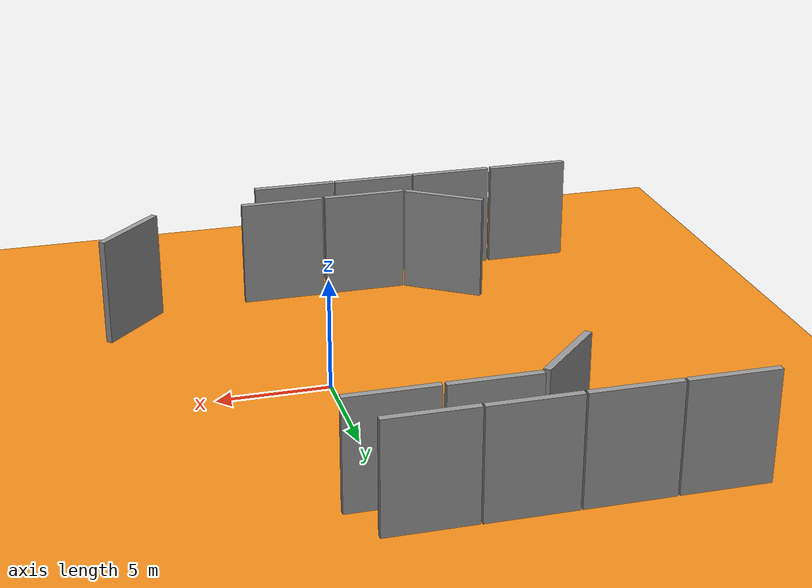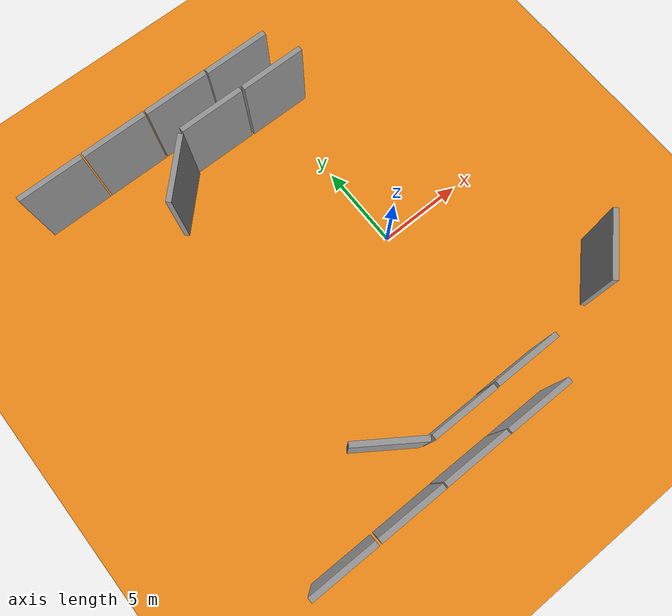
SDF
<sdf version="1.7">
 <world name="default">
  <model name="ground_plane">
   <static>1</static>
   <link name="link">
    <collision name="collision">
     <geometry><plane><normal>0 0 1</normal><size>100 100</size></plane></geometry>
     <surface>
      <contact><collide_bitmask>65535</collide_bitmask></contact>
      <friction><ode><mu>100</mu><mu2>50</mu2></ode></friction>
     </surface>
    </collision>
    <visual name="visual">
     <cast_shadows>0</cast_shadows>
     <geometry><plane><normal>0 0 1</normal><size>100 100</size></plane></geometry>
     <material>
      <script><uri>file://media/materials/scripts/gazebo.material</uri><name>Gazebo/Orange</name></script>
     </material>
    </visual>
   </link>
  </model>
  <model name="Wall1">
   <link name="link_1">
    <inertial>
     <mass>5.76087</mass>
     <inertia><ixx>18.5128</ixx><ixy>0</ixy><ixz>0</ixz><iyy>11.4896</iyy><iyz>0</iyz><izz>7.11389</izz></inertia>
    </inertial>
    <pose>-0.387698 -7.91676 -1e-06 0 -0 1.56704</pose>
    <visual name="visual">
     <geometry><box><size>0.30743 3.83717 4.88248</size></box></geometry>
     <material>
      <lighting>1</lighting>
      <script><uri>file://media/materials/scripts/gazebo.material</uri><name>Gazebo/Grey</name></script>
      <shader type="pixel"/>
     </material>
    </visual>
    <collision name="collision">
     <geometry><box><size>0.30743 3.83717 4.88248</size></box></geometry>
     <surface>
      <friction>
       <ode><mu>1</mu><mu2>1</mu2><fdir1>0 0 0</fdir1><slip1>0</slip1><slip2>0</slip2></ode>
       <torsional>
        <coefficient>1</coefficient>
        <patch_radius>0</patch_radius>
        <surface_radius>0</surface_radius>
        <use_patch_radius>1</use_patch_radius>
        <ode><slip>0</slip></ode>
       </torsional>
      </friction>
      <bounce><restitution_coefficient>0</restitution_coefficient><threshold>1e+06</threshold></bounce>
      <contact>
       <collide_without_contact>0</collide_without_contact>
       <collide_without_contact_bitmask>1</collide_without_contact_bitmask>
       <collide_bitmask>1</collide_bitmask>
       <ode>
        <soft_cfm>0</soft_cfm>
        <soft_erp>0.2</soft_erp>
        <kp>1e+13</kp>
        <kd>1</kd>
        <max_vel>0.01</max_vel>
        <min_depth>0</min_depth>
       </ode>
       <bullet>
        <split_impulse>1</split_impulse>
        <split_impulse_penetration_threshold>-0.01</split_impulse_penetration_threshold>
        <soft_cfm>0</soft_cfm>
        <soft_erp>0.2</soft_erp>
        <kp>1e+13</kp>
        <kd>1</kd>
       </bullet>
      </contact>
     </surface>
    </collision>
   </link>
   <static>1</static>
   <pose>-0.535382 20 2.43363 0 -0 0</pose>
  </model>
  <model name="Wall1_clone">
   <link name="link_1">
    <inertial>
     <mass>5.76087</mass>
     <inertia><ixx>18.5128</ixx><ixy>0</ixy><ixz>0</ixz><iyy>11.4896</iyy><iyz>0</iyz><izz>7.11389</izz></inertia>
    </inertial>
    <pose>-0.387698 -7.91676 -1e-06 0 -0 1.56704</pose>
    <visual name="visual">
     <geometry><box><size>0.30743 3.83717 4.88248</size></box></geometry>
     <material>
      <lighting>1</lighting>
      <script><uri>file://media/materials/scripts/gazebo.material</uri><name>Gazebo/Grey</name></script>
      <shader type="pixel"/>
     </material>
    </visual>
    <collision name="collision">
     <geometry><box><size>0.30743 3.83717 4.88248</size></box></geometry>
     <surface>
      <friction>
       <ode><mu>1</mu><mu2>1</mu2><fdir1>0 0 0</fdir1><slip1>0</slip1><slip2>0</slip2></ode>
       <torsional>
        <coefficient>1</coefficient>
        <patch_radius>0</patch_radius>
        <surface_radius>0</surface_radius>
        <use_patch_radius>1</use_patch_radius>
        <ode><slip>0</slip></ode>
       </torsional>
      </friction>
      <bounce><restitution_coefficient>0</restitution_coefficient><threshold>1e+06</threshold></bounce>
      <contact>
       <collide_without_contact>0</collide_without_contact>
       <collide_without_contact_bitmask>1</collide_without_contact_bitmask>
       <collide_bitmask>1</collide_bitmask>
       <ode>
        <soft_cfm>0</soft_cfm>
        <soft_erp>0.2</soft_erp>
        <kp>1e+13</kp>
        <kd>1</kd>
        <max_vel>0.01</max_vel>
        <min_depth>0</min_depth>
       </ode>
       <bullet>
        <split_impulse>1</split_impulse>
        <split_impulse_penetration_threshold>-0.01</split_impulse_penetration_threshold>
        <soft_cfm>0</soft_cfm>
        <soft_erp>0.2</soft_erp>
        <kp>1e+13</kp>
        <kd>1</kd>
       </bullet>
      </contact>
     </surface>
    </collision>
   </link>
   <static>1</static>
   <pose>0.393449 18.0265 2.43363 0 -0 0</pose>
  </model>
  <model name="Wall1_clone_clone">
   <link name="link_1">
    <inertial>
     <mass>5.76087</mass>
     <inertia><ixx>18.5128</ixx><ixy>0</ixy><ixz>0</ixz><iyy>11.4896</iyy><iyz>0</iyz><izz>7.11389</izz></inertia>
    </inertial>
    <pose>-0.387698 -7.91676 -1e-06 0 -0 1.56704</pose>
    <visual name="visual">
     <geometry><box><size>0.30743 3.83717 4.88248</size></box></geometry>
     <material>
      <lighting>1</lighting>
      <script><uri>file://media/materials/scripts/gazebo.material</uri><name>Gazebo/Grey</name></script>
      <shader type="pixel"/>
     </material>
    </visual>
    <collision name="collision">
     <geometry><box><size>0.30743 3.83717 4.88248</size></box></geometry>
     <surface>
      <friction>
       <ode><mu>1</mu><mu2>1</mu2><fdir1>0 0 0</fdir1><slip1>0</slip1><slip2>0</slip2></ode>
       <torsional>
        <coefficient>1</coefficient>
        <patch_radius>0</patch_radius>
        <surface_radius>0</surface_radius>
        <use_patch_radius>1</use_patch_radius>
        <ode><slip>0</slip></ode>
       </torsional>
      </friction>
      <bounce><restitution_coefficient>0</restitution_coefficient><threshold>1e+06</threshold></bounce>
      <contact>
       <collide_without_contact>0</collide_without_contact>
       <collide_without_contact_bitmask>1</collide_without_contact_bitmask>
       <collide_bitmask>1</collide_bitmask>
       <ode>
        <soft_cfm>0</soft_cfm>
        <soft_erp>0.2</soft_erp>
        <kp>1e+13</kp>
        <kd>1</kd>
        <max_vel>0.01</max_vel>
        <min_depth>0</min_depth>
       </ode>
       <bullet>
        <split_impulse>1</split_impulse>
        <split_impulse_penetration_threshold>-0.01</split_impulse_penetration_threshold>
        <soft_cfm>0</soft_cfm>
        <soft_erp>0.2</soft_erp>
        <kp>1e+13</kp>
        <kd>1</kd>
       </bullet>
      </contact>
     </surface>
    </collision>
   </link>
   <static>1</static>
   <pose>0.380969 -2.02011 2.43363 0 -0 0</pose>
  </model>
  <model name="Wall1_clone_clone_0">
   <link name="link_1">
    <inertial>
     <mass>5.76087</mass>
     <inertia><ixx>18.5128</ixx><ixy>0</ixy><ixz>0</ixz><iyy>11.4896</iyy><iyz>0</iyz><izz>7.11389</izz></inertia>
    </inertial>
    <pose>-0.387698 -7.91676 -1e-06 0 -0 1.56704</pose>
    <visual name="visual">
     <geometry><box><size>0.30743 3.83717 4.88248</size></box></geometry>
     <material>
      <lighting>1</lighting>
      <script><uri>file://media/materials/scripts/gazebo.material</uri><name>Gazebo/Grey</name></script>
      <shader type="pixel"/>
     </material>
    </visual>
    <collision name="collision">
     <geometry><box><size>0.30743 3.83717 4.88248</size></box></geometry>
     <surface>
      <friction>
       <ode><mu>1</mu><mu2>1</mu2><fdir1>0 0 0</fdir1><slip1>0</slip1><slip2>0</slip2></ode>
       <torsional>
        <coefficient>1</coefficient>
        <patch_radius>0</patch_radius>
        <surface_radius>0</surface_radius>
        <use_patch_radius>1</use_patch_radius>
        <ode><slip>0</slip></ode>
       </torsional>
      </friction>
      <bounce><restitution_coefficient>0</restitution_coefficient><threshold>1e+06</threshold></bounce>
      <contact>
       <collide_without_contact>0</collide_without_contact>
       <collide_without_contact_bitmask>1</collide_without_contact_bitmask>
       <collide_bitmask>1</collide_bitmask>
       <ode>
        <soft_cfm>0</soft_cfm>
        <soft_erp>0.2</soft_erp>
        <kp>1e+13</kp>
        <kd>1</kd>
        <max_vel>0.01</max_vel>
        <min_depth>0</min_depth>
       </ode>
       <bullet>
        <split_impulse>1</split_impulse>
        <split_impulse_penetration_threshold>-0.01</split_impulse_penetration_threshold>
        <soft_cfm>0</soft_cfm>
        <soft_erp>0.2</soft_erp>
        <kp>1e+13</kp>
        <kd>1</kd>
       </bullet>
      </contact>
     </surface>
    </collision>
   </link>
   <static>1</static>
   <pose>-0.633922 -4.01434 2.43363 0 -0 0</pose>
  </model>
  <model name="Wall1_clone_clone_0_clone_clone_0">
   <link name="link_1">
    <inertial>
     <mass>5.76087</mass>
     <inertia><ixx>18.5128</ixx><ixy>0</ixy><ixz>0</ixz><iyy>11.4896</iyy><iyz>0</iyz><izz>7.11389</izz></inertia>
    </inertial>
    <pose>-0.387698 -7.91676 -1e-06 0 -0 1.56704</pose>
    <visual name="visual">
     <geometry><box><size>0.30743 3.83717 4.88248</size></box></geometry>
     <material>
      <lighting>1</lighting>
      <script><uri>file://media/materials/scripts/gazebo.material</uri><name>Gazebo/Grey</name></script>
      <shader type="pixel"/>
     </material>
    </visual>
    <collision name="collision">
     <geometry><box><size>0.30743 3.83717 4.88248</size></box></geometry>
     <surface>
      <friction>
       <ode><mu>1</mu><mu2>1</mu2><fdir1>0 0 0</fdir1><slip1>0</slip1><slip2>0</slip2></ode>
       <torsional>
        <coefficient>1</coefficient>
        <patch_radius>0</patch_radius>
        <surface_radius>0</surface_radius>
        <use_patch_radius>1</use_patch_radius>
        <ode><slip>0</slip></ode>
       </torsional>
      </friction>
      <bounce><restitution_coefficient>0</restitution_coefficient><threshold>1e+06</threshold></bounce>
      <contact>
       <collide_without_contact>0</collide_without_contact>
       <collide_without_contact_bitmask>1</collide_without_contact_bitmask>
       <collide_bitmask>1</collide_bitmask>
       <ode>
        <soft_cfm>0</soft_cfm>
        <soft_erp>0.2</soft_erp>
        <kp>1e+13</kp>
        <kd>1</kd>
        <max_vel>0.01</max_vel>
        <min_depth>0</min_depth>
       </ode>
       <bullet>
        <split_impulse>1</split_impulse>
        <split_impulse_penetration_threshold>-0.01</split_impulse_penetration_threshold>
        <soft_cfm>0</soft_cfm>
        <soft_erp>0.2</soft_erp>
        <kp>1e+13</kp>
        <kd>1</kd>
       </bullet>
      </contact>
     </surface>
    </collision>
   </link>
   <static>1</static>
   <pose>-4.54932 -3.98514 2.43363 0 -0 0</pose>
  </model>
  <model name="Wall1_clone_clone_0_clone_clone_1">
   <link name="link_1">
    <inertial>
     <mass>5.76087</mass>
     <inertia><ixx>18.5128</ixx><ixy>0</ixy><ixz>0</ixz><iyy>11.4896</iyy><iyz>0</iyz><izz>7.11389</izz></inertia>
    </inertial>
    <pose>-0.387698 -7.91676 -1e-06 0 -0 1.56704</pose>
    <visual name="visual">
     <geometry><box><size>0.30743 3.83717 4.88248</size></box></geometry>
     <material>
      <lighting>1</lighting>
      <script><uri>file://media/materials/scripts/gazebo.material</uri><name>Gazebo/Grey</name></script>
      <shader type="pixel"/>
     </material>
    </visual>
    <collision name="collision">
     <geometry><box><size>0.30743 3.83717 4.88248</size></box></geometry>
     <surface>
      <friction>
       <ode><mu>1</mu><mu2>1</mu2><fdir1>0 0 0</fdir1><slip1>0</slip1><slip2>0</slip2></ode>
       <torsional>
        <coefficient>1</coefficient>
        <patch_radius>0</patch_radius>
        <surface_radius>0</surface_radius>
        <use_patch_radius>1</use_patch_radius>
        <ode><slip>0</slip></ode>
       </torsional>
      </friction>
      <bounce><restitution_coefficient>0</restitution_coefficient><threshold>1e+06</threshold></bounce>
      <contact>
       <collide_without_contact>0</collide_without_contact>
       <collide_without_contact_bitmask>1</collide_without_contact_bitmask>
       <collide_bitmask>1</collide_bitmask>
       <ode>
        <soft_cfm>0</soft_cfm>
        <soft_erp>0.2</soft_erp>
        <kp>1e+13</kp>
        <kd>1</kd>
        <max_vel>0.01</max_vel>
        <min_depth>0</min_depth>
       </ode>
       <bullet>
        <split_impulse>1</split_impulse>
        <split_impulse_penetration_threshold>-0.01</split_impulse_penetration_threshold>
        <soft_cfm>0</soft_cfm>
        <soft_erp>0.2</soft_erp>
        <kp>1e+13</kp>
        <kd>1</kd>
       </bullet>
      </contact>
     </surface>
    </collision>
   </link>
   <static>1</static>
   <pose>-3.5872 -2.03359 2.43363 0 -0 0</pose>
  </model>
  <model name="Wall1_clone_clone_0_clone_clone_2">
   <link name="link_1">
    <inertial>
     <mass>5.76087</mass>
     <inertia><ixx>18.5128</ixx><ixy>0</ixy><ixz>0</ixz><iyy>11.4896</iyy><iyz>0</iyz><izz>7.11389</izz></inertia>
    </inertial>
    <pose>-0.387698 -7.91676 -1e-06 0 -0 1.56704</pose>
    <visual name="visual">
     <geometry><box><size>0.30743 3.83717 4.88248</size></box></geometry>
     <material>
      <lighting>1</lighting>
      <script><uri>file://media/materials/scripts/gazebo.material</uri><name>Gazebo/Grey</name></script>
      <shader type="pixel"/>
     </material>
    </visual>
    <collision name="collision">
     <geometry><box><size>0.30743 3.83717 4.88248</size></box></geometry>
     <surface>
      <friction>
       <ode><mu>1</mu><mu2>1</mu2><fdir1>0 0 0</fdir1><slip1>0</slip1><slip2>0</slip2></ode>
       <torsional>
        <coefficient>1</coefficient>
        <patch_radius>0</patch_radius>
        <surface_radius>0</surface_radius>
        <use_patch_radius>1</use_patch_radius>
        <ode><slip>0</slip></ode>
       </torsional>
      </friction>
      <bounce><restitution_coefficient>0</restitution_coefficient><threshold>1e+06</threshold></bounce>
      <contact>
       <collide_without_contact>0</collide_without_contact>
       <collide_without_contact_bitmask>1</collide_without_contact_bitmask>
       <collide_bitmask>1</collide_bitmask>
       <ode>
        <soft_cfm>0</soft_cfm>
        <soft_erp>0.2</soft_erp>
        <kp>1e+13</kp>
        <kd>1</kd>
        <max_vel>0.01</max_vel>
        <min_depth>0</min_depth>
       </ode>
       <bullet>
        <split_impulse>1</split_impulse>
        <split_impulse_penetration_threshold>-0.01</split_impulse_penetration_threshold>
        <soft_cfm>0</soft_cfm>
        <soft_erp>0.2</soft_erp>
        <kp>1e+13</kp>
        <kd>1</kd>
       </bullet>
      </contact>
     </surface>
    </collision>
   </link>
   <static>1</static>
   <pose>-3.58263 18.0644 2.43363 0 -0 0</pose>
  </model>
  <model name="Wall1_clone_clone_0_clone_clone_5">
   <link name="link_1">
    <inertial>
     <mass>5.76087</mass>
     <inertia><ixx>18.5128</ixx><ixy>0</ixy><ixz>0</ixz><iyy>11.4896</iyy><iyz>0</iyz><izz>7.11389</izz></inertia>
    </inertial>
    <pose>-0.387698 -7.91676 -1e-06 0 -0 1.56704</pose>
    <visual name="visual">
     <geometry><box><size>0.30743 3.83717 4.88248</size></box></geometry>
     <material>
      <lighting>1</lighting>
      <script><uri>file://media/materials/scripts/gazebo.material</uri><name>Gazebo/Grey</name></script>
      <shader type="pixel"/>
     </material>
    </visual>
    <collision name="collision">
     <geometry><box><size>0.30743 3.83717 4.88248</size></box></geometry>
     <surface>
      <friction>
       <ode><mu>1</mu><mu2>1</mu2><fdir1>0 0 0</fdir1><slip1>0</slip1><slip2>0</slip2></ode>
       <torsional>
        <coefficient>1</coefficient>
        <patch_radius>0</patch_radius>
        <surface_radius>0</surface_radius>
        <use_patch_radius>1</use_patch_radius>
        <ode><slip>0</slip></ode>
       </torsional>
      </friction>
      <bounce><restitution_coefficient>0</restitution_coefficient><threshold>1e+06</threshold></bounce>
      <contact>
       <collide_without_contact>0</collide_without_contact>
       <collide_without_contact_bitmask>1</collide_without_contact_bitmask>
       <collide_bitmask>1</collide_bitmask>
       <ode>
        <soft_cfm>0</soft_cfm>
        <soft_erp>0.2</soft_erp>
        <kp>1e+13</kp>
        <kd>1</kd>
        <max_vel>0.01</max_vel>
        <min_depth>0</min_depth>
       </ode>
       <bullet>
        <split_impulse>1</split_impulse>
        <split_impulse_penetration_threshold>-0.01</split_impulse_penetration_threshold>
        <soft_cfm>0</soft_cfm>
        <soft_erp>0.2</soft_erp>
        <kp>1e+13</kp>
        <kd>1</kd>
       </bullet>
      </contact>
     </surface>
    </collision>
   </link>
   <static>1</static>
   <pose>-4.44124 20.0345 2.43363 0 -0 0</pose>
  </model>
  <model name="Wall1_clone_clone_0_clone_clone_4_clone_0">
   <link name="link_1">
    <inertial>
     <mass>5.76087</mass>
     <inertia><ixx>18.5128</ixx><ixy>0</ixy><ixz>0</ixz><iyy>11.4896</iyy><iyz>0</iyz><izz>7.11389</izz></inertia>
    </inertial>
    <pose>-0.387698 -7.91676 -1e-06 0 -0 1.56704</pose>
    <visual name="visual">
     <geometry><box><size>0.30743 3.83717 4.88248</size></box></geometry>
     <material>
      <lighting>1</lighting>
      <script><uri>file://media/materials/scripts/gazebo.material</uri><name>Gazebo/Grey</name></script>
      <shader type="pixel"/>
     </material>
    </visual>
    <collision name="collision">
     <geometry><box><size>0.30743 3.83717 4.88248</size></box></geometry>
     <surface>
      <friction>
       <ode><mu>1</mu><mu2>1</mu2><fdir1>0 0 0</fdir1><slip1>0</slip1><slip2>0</slip2></ode>
       <torsional>
        <coefficient>1</coefficient>
        <patch_radius>0</patch_radius>
        <surface_radius>0</surface_radius>
        <use_patch_radius>1</use_patch_radius>
        <ode><slip>0</slip></ode>
       </torsional>
      </friction>
      <bounce><restitution_coefficient>0</restitution_coefficient><threshold>1e+06</threshold></bounce>
      <contact>
       <collide_without_contact>0</collide_without_contact>
       <collide_without_contact_bitmask>1</collide_without_contact_bitmask>
       <collide_bitmask>1</collide_bitmask>
       <ode>
        <soft_cfm>0</soft_cfm>
        <soft_erp>0.2</soft_erp>
        <kp>1e+13</kp>
        <kd>1</kd>
        <max_vel>0.01</max_vel>
        <min_depth>0</min_depth>
       </ode>
       <bullet>
        <split_impulse>1</split_impulse>
        <split_impulse_penetration_threshold>-0.01</split_impulse_penetration_threshold>
        <soft_cfm>0</soft_cfm>
        <soft_erp>0.2</soft_erp>
        <kp>1e+13</kp>
        <kd>1</kd>
       </bullet>
      </contact>
     </surface>
    </collision>
   </link>
   <static>1</static>
   <pose>-8.35846 20.0516 2.43363 0 -0 0</pose>
  </model>
  <model name="Wall1_clone_clone_0_clone_clone_4_clone_2">
   <link name="link_1">
    <inertial>
     <mass>5.76087</mass>
     <inertia><ixx>18.5128</ixx><ixy>0</ixy><ixz>0</ixz><iyy>11.4896</iyy><iyz>0</iyz><izz>7.11389</izz></inertia>
    </inertial>
    <pose>-0.387698 -7.91676 -1e-06 0 -0 1.56704</pose>
    <visual name="visual">
     <geometry><box><size>0.30743 3.83717 4.88248</size></box></geometry>
     <material>
      <lighting>1</lighting>
      <script><uri>file://media/materials/scripts/gazebo.material</uri><name>Gazebo/Grey</name></script>
      <shader type="pixel"/>
     </material>
    </visual>
    <collision name="collision">
     <geometry><box><size>0.30743 3.83717 4.88248</size></box></geometry>
     <surface>
      <friction>
       <ode><mu>1</mu><mu2>1</mu2><fdir1>0 0 0</fdir1><slip1>0</slip1><slip2>0</slip2></ode>
       <torsional>
        <coefficient>1</coefficient>
        <patch_radius>0</patch_radius>
        <surface_radius>0</surface_radius>
        <use_patch_radius>1</use_patch_radius>
        <ode><slip>0</slip></ode>
       </torsional>
      </friction>
      <bounce><restitution_coefficient>0</restitution_coefficient><threshold>1e+06</threshold></bounce>
      <contact>
       <collide_without_contact>0</collide_without_contact>
       <collide_without_contact_bitmask>1</collide_without_contact_bitmask>
       <collide_bitmask>1</collide_bitmask>
       <ode>
        <soft_cfm>0</soft_cfm>
        <soft_erp>0.2</soft_erp>
        <kp>1e+13</kp>
        <kd>1</kd>
        <max_vel>0.01</max_vel>
        <min_depth>0</min_depth>
       </ode>
       <bullet>
        <split_impulse>1</split_impulse>
        <split_impulse_penetration_threshold>-0.01</split_impulse_penetration_threshold>
        <soft_cfm>0</soft_cfm>
        <soft_erp>0.2</soft_erp>
        <kp>1e+13</kp>
        <kd>1</kd>
       </bullet>
      </contact>
     </surface>
    </collision>
   </link>
   <static>1</static>
   <pose>-8.457 -3.98244 2.43363 0 -0 0</pose>
  </model>
  <model name="Wall1_clone_clone_0_clone_clone_3_clone_3">
   <link name="link_1">
    <inertial>
     <mass>5.76087</mass>
     <inertia><ixx>18.5128</ixx><ixy>0</ixy><ixz>0</ixz><iyy>11.4896</iyy><iyz>0</iyz><izz>7.11389</izz></inertia>
    </inertial>
    <pose>-0.387698 -7.91676 -1e-06 0 -0 1.56704</pose>
    <visual name="visual">
     <geometry><box><size>0.30743 3.83717 4.88248</size></box></geometry>
     <material>
      <lighting>1</lighting>
      <script><uri>file://media/materials/scripts/gazebo.material</uri><name>Gazebo/Grey</name></script>
      <shader type="pixel"/>
     </material>
    </visual>
    <collision name="collision">
     <geometry><box><size>0.30743 3.83717 4.88248</size></box></geometry>
     <surface>
      <friction>
       <ode><mu>1</mu><mu2>1</mu2><fdir1>0 0 0</fdir1><slip1>0</slip1><slip2>0</slip2></ode>
       <torsional>
        <coefficient>1</coefficient>
        <patch_radius>0</patch_radius>
        <surface_radius>0</surface_radius>
        <use_patch_radius>1</use_patch_radius>
        <ode><slip>0</slip></ode>
       </torsional>
      </friction>
      <bounce><restitution_coefficient>0</restitution_coefficient><threshold>1e+06</threshold></bounce>
      <contact>
       <collide_without_contact>0</collide_without_contact>
       <collide_without_contact_bitmask>1</collide_without_contact_bitmask>
       <collide_bitmask>1</collide_bitmask>
       <ode>
        <soft_cfm>0</soft_cfm>
        <soft_erp>0.2</soft_erp>
        <kp>1e+13</kp>
        <kd>1</kd>
        <max_vel>0.01</max_vel>
        <min_depth>0</min_depth>
       </ode>
       <bullet>
        <split_impulse>1</split_impulse>
        <split_impulse_penetration_threshold>-0.01</split_impulse_penetration_threshold>
        <soft_cfm>0</soft_cfm>
        <soft_erp>0.2</soft_erp>
        <kp>1e+13</kp>
        <kd>1</kd>
       </bullet>
      </contact>
     </surface>
    </collision>
   </link>
   <static>1</static>
   <pose>-12.2764 20.0619 2.43363 0 -0 0</pose>
  </model>
  <model name="Wall1_clone_clone_0_clone_clone_3_clone_4">
   <link name="link_1">
    <inertial>
     <mass>5.76087</mass>
     <inertia><ixx>18.5128</ixx><ixy>0</ixy><ixz>0</ixz><iyy>11.4896</iyy><iyz>0</iyz><izz>7.11389</izz></inertia>
    </inertial>
    <pose>-0.387698 -7.91676 -1e-06 0 -0 1.56704</pose>
    <visual name="visual">
     <geometry><box><size>0.30743 3.83717 4.88248</size></box></geometry>
     <material>
      <lighting>1</lighting>
      <script><uri>file://media/materials/scripts/gazebo.material</uri><name>Gazebo/Grey</name></script>
      <shader type="pixel"/>
     </material>
    </visual>
    <collision name="collision">
     <geometry><box><size>0.30743 3.83717 4.88248</size></box></geometry>
     <surface>
      <friction>
       <ode><mu>1</mu><mu2>1</mu2><fdir1>0 0 0</fdir1><slip1>0</slip1><slip2>0</slip2></ode>
       <torsional>
        <coefficient>1</coefficient>
        <patch_radius>0</patch_radius>
        <surface_radius>0</surface_radius>
        <use_patch_radius>1</use_patch_radius>
        <ode><slip>0</slip></ode>
       </torsional>
      </friction>
      <bounce><restitution_coefficient>0</restitution_coefficient><threshold>1e+06</threshold></bounce>
      <contact>
       <collide_without_contact>0</collide_without_contact>
       <collide_without_contact_bitmask>1</collide_without_contact_bitmask>
       <collide_bitmask>1</collide_bitmask>
       <ode>
        <soft_cfm>0</soft_cfm>
        <soft_erp>0.2</soft_erp>
        <kp>1e+13</kp>
        <kd>1</kd>
        <max_vel>0.01</max_vel>
        <min_depth>0</min_depth>
       </ode>
       <bullet>
        <split_impulse>1</split_impulse>
        <split_impulse_penetration_threshold>-0.01</split_impulse_penetration_threshold>
        <soft_cfm>0</soft_cfm>
        <soft_erp>0.2</soft_erp>
        <kp>1e+13</kp>
        <kd>1</kd>
       </bullet>
      </contact>
     </surface>
    </collision>
   </link>
   <static>1</static>
   <pose>-12.4314 -3.96954 2.43363 0 -0 0</pose>
  </model>
  <model name="Wall1_clone_clone_0_clone_clone_3_clone_5_clone">
   <link name="link_1">
    <inertial>
     <mass>5.76087</mass>
     <inertia><ixx>18.5128</ixx><ixy>0</ixy><ixz>0</ixz><iyy>11.4896</iyy><iyz>0</iyz><izz>7.11389</izz></inertia>
    </inertial>
    <pose>-0.387698 -7.91676 -1e-06 0 -0 1.56704</pose>
    <visual name="visual">
     <geometry><box><size>0.30743 3.83717 4.88248</size></box></geometry>
     <material>
      <lighting>1</lighting>
      <script><uri>file://media/materials/scripts/gazebo.material</uri><name>Gazebo/Grey</name></script>
      <shader type="pixel"/>
     </material>
    </visual>
    <collision name="collision">
     <geometry><box><size>0.30743 3.83717 4.88248</size></box></geometry>
     <surface>
      <friction>
       <ode><mu>1</mu><mu2>1</mu2><fdir1>0 0 0</fdir1><slip1>0</slip1><slip2>0</slip2></ode>
       <torsional>
        <coefficient>1</coefficient>
        <patch_radius>0</patch_radius>
        <surface_radius>0</surface_radius>
        <use_patch_radius>1</use_patch_radius>
        <ode><slip>0</slip></ode>
       </torsional>
      </friction>
      <bounce><restitution_coefficient>0</restitution_coefficient><threshold>1e+06</threshold></bounce>
      <contact>
       <collide_without_contact>0</collide_without_contact>
       <collide_without_contact_bitmask>1</collide_without_contact_bitmask>
       <collide_bitmask>1</collide_bitmask>
       <ode>
        <soft_cfm>0</soft_cfm>
        <soft_erp>0.2</soft_erp>
        <kp>1e+13</kp>
        <kd>1</kd>
        <max_vel>0.01</max_vel>
        <min_depth>0</min_depth>
       </ode>
       <bullet>
        <split_impulse>1</split_impulse>
        <split_impulse_penetration_threshold>-0.01</split_impulse_penetration_threshold>
        <soft_cfm>0</soft_cfm>
        <soft_erp>0.2</soft_erp>
        <kp>1e+13</kp>
        <kd>1</kd>
       </bullet>
      </contact>
     </surface>
    </collision>
   </link>
   <static>1</static>
   <pose>-2.85162 -2.46896 2.43363 0 0 -0.59485</pose>
  </model>
  <model name="Wall1_clone_clone_0_clone_clone_3_clone_6">
   <link name="link_1">
    <inertial>
     <mass>5.76087</mass>
     <inertia><ixx>18.5128</ixx><ixy>0</ixy><ixz>0</ixz><iyy>11.4896</iyy><iyz>0</iyz><izz>7.11389</izz></inertia>
    </inertial>
    <pose>-0.387698 -7.91676 -1e-06 0 -0 1.56704</pose>
    <visual name="visual">
     <geometry><box><size>0.30743 3.83717 4.88248</size></box></geometry>
     <material>
      <lighting>1</lighting>
      <script><uri>file://media/materials/scripts/gazebo.material</uri><name>Gazebo/Grey</name></script>
      <shader type="pixel"/>
     </material>
    </visual>
    <collision name="collision">
     <geometry><box><size>0.30743 3.83717 4.88248</size></box></geometry>
     <surface>
      <friction>
       <ode><mu>1</mu><mu2>1</mu2><fdir1>0 0 0</fdir1><slip1>0</slip1><slip2>0</slip2></ode>
       <torsional>
        <coefficient>1</coefficient>
        <patch_radius>0</patch_radius>
        <surface_radius>0</surface_radius>
        <use_patch_radius>1</use_patch_radius>
        <ode><slip>0</slip></ode>
       </torsional>
      </friction>
      <bounce><restitution_coefficient>0</restitution_coefficient><threshold>1e+06</threshold></bounce>
      <contact>
       <collide_without_contact>0</collide_without_contact>
       <collide_without_contact_bitmask>1</collide_without_contact_bitmask>
       <collide_bitmask>1</collide_bitmask>
       <ode>
        <soft_cfm>0</soft_cfm>
        <soft_erp>0.2</soft_erp>
        <kp>1e+13</kp>
        <kd>1</kd>
        <max_vel>0.01</max_vel>
        <min_depth>0</min_depth>
       </ode>
       <bullet>
        <split_impulse>1</split_impulse>
        <split_impulse_penetration_threshold>-0.01</split_impulse_penetration_threshold>
        <soft_cfm>0</soft_cfm>
        <soft_erp>0.2</soft_erp>
        <kp>1e+13</kp>
        <kd>1</kd>
       </bullet>
      </contact>
     </surface>
    </collision>
   </link>
   <static>1</static>
   <pose>1.96062 -2.5812 2.43363 0 -0 0.79464</pose>
  </model>
  <model name="Wall1_clone_clone_0_clone_clone_3_clone_6_clone_clone">
   <link name="link_1">
    <inertial>
     <mass>5.76087</mass>
     <inertia><ixx>18.5128</ixx><ixy>0</ixy><ixz>0</ixz><iyy>11.4896</iyy><iyz>0</iyz><izz>7.11389</izz></inertia>
    </inertial>
    <pose>-0.387698 -7.91676 -1e-06 0 -0 1.56704</pose>
    <visual name="visual">
     <geometry><box><size>0.30743 3.83717 4.88248</size></box></geometry>
     <material>
      <lighting>1</lighting>
      <script><uri>file://media/materials/scripts/gazebo.material</uri><name>Gazebo/Grey</name></script>
      <shader type="pixel"/>
     </material>
    </visual>
    <collision name="collision">
     <geometry><box><size>0.30743 3.83717 4.88248</size></box></geometry>
     <surface>
      <friction>
       <ode><mu>1</mu><mu2>1</mu2><fdir1>0 0 0</fdir1><slip1>0</slip1><slip2>0</slip2></ode>
       <torsional>
        <coefficient>1</coefficient>
        <patch_radius>0</patch_radius>
        <surface_radius>0</surface_radius>
        <use_patch_radius>1</use_patch_radius>
        <ode><slip>0</slip></ode>
       </torsional>
      </friction>
      <bounce><restitution_coefficient>0</restitution_coefficient><threshold>1e+06</threshold></bounce>
      <contact>
       <collide_without_contact>0</collide_without_contact>
       <collide_without_contact_bitmask>1</collide_without_contact_bitmask>
       <collide_bitmask>1</collide_bitmask>
       <ode>
        <soft_cfm>0</soft_cfm>
        <soft_erp>0.2</soft_erp>
        <kp>1e+13</kp>
        <kd>1</kd>
        <max_vel>0.01</max_vel>
        <min_depth>0</min_depth>
       </ode>
       <bullet>
        <split_impulse>1</split_impulse>
        <split_impulse_penetration_threshold>-0.01</split_impulse_penetration_threshold>
        <soft_cfm>0</soft_cfm>
        <soft_erp>0.2</soft_erp>
        <kp>1e+13</kp>
        <kd>1</kd>
       </bullet>
      </contact>
     </surface>
    </collision>
   </link>
   <static>1</static>
   <pose>-12.7555 14.4688 2.43363 0 -0 0.79464</pose>
  </model>
 </world>
</sdf>
